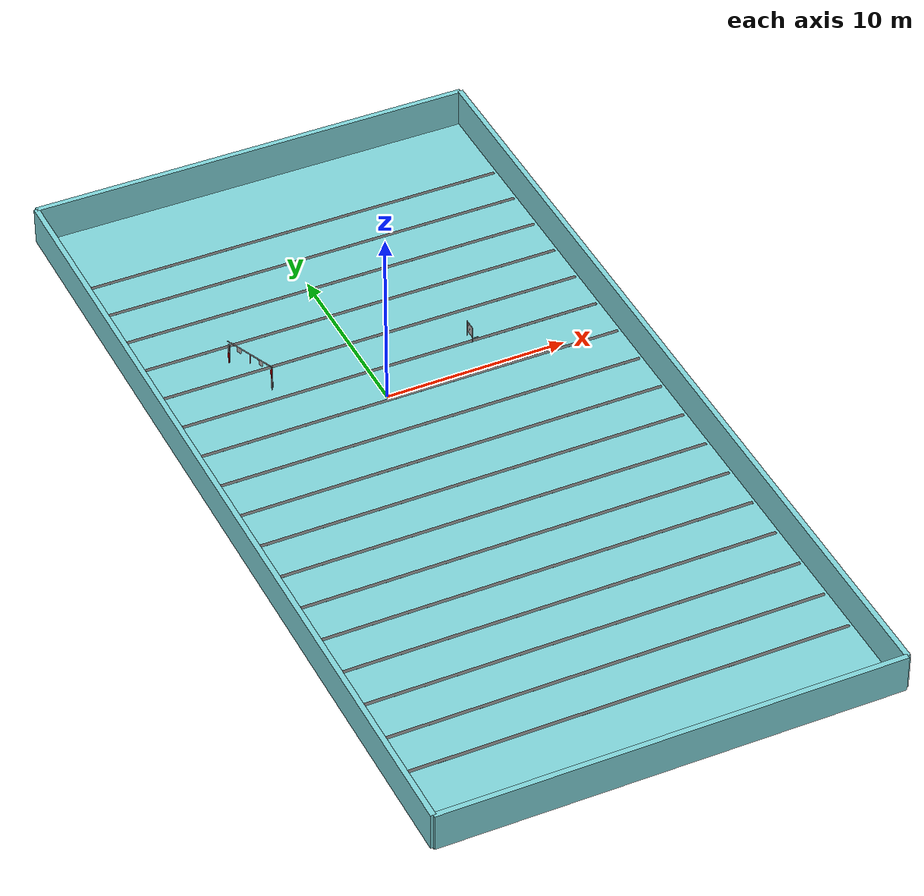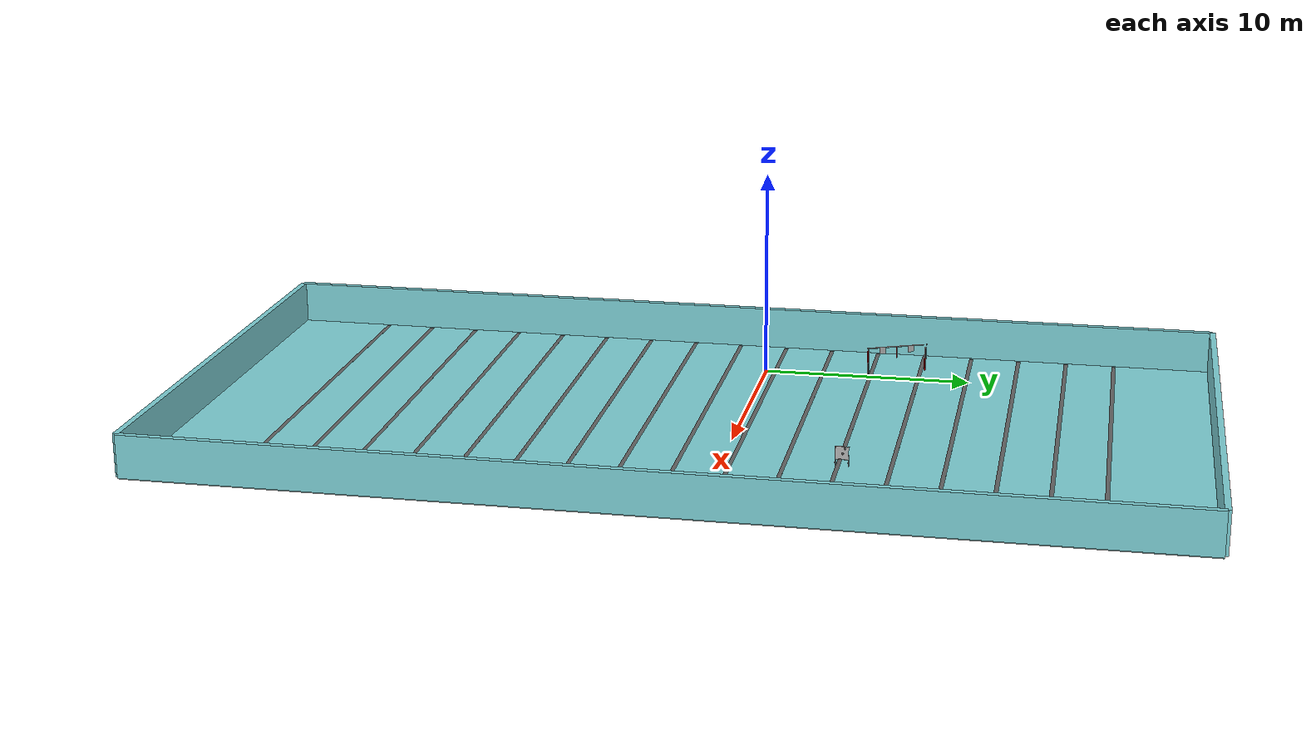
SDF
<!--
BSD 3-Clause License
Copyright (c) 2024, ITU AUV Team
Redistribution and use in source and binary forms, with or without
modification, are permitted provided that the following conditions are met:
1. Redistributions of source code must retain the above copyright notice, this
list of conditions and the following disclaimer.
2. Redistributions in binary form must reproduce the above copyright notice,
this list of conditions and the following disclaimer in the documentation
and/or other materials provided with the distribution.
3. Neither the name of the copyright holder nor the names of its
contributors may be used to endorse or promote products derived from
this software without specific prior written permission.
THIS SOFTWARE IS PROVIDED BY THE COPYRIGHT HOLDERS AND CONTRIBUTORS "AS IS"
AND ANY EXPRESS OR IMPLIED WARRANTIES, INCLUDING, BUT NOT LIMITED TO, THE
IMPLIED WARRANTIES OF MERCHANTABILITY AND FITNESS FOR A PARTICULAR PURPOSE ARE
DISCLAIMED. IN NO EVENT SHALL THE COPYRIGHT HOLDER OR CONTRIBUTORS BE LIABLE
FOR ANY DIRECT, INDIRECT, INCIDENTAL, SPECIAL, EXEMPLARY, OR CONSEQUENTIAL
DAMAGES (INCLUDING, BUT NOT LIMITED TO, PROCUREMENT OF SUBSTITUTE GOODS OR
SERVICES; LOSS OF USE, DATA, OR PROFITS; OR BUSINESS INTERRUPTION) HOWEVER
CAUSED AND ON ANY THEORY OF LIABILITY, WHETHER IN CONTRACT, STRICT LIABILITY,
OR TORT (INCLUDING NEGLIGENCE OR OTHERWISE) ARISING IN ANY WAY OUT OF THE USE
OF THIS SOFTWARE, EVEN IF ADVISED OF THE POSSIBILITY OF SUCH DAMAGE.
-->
<sdf version="1.6">
 <world name="prototype_world">
  <physics name="1ms" type="ignored">
   <max_step_size>0.004</max_step_size>
   <real_time_factor>1.0</real_time_factor>
   <real_time_update_rate>250</real_time_update_rate>
  </physics>
  <scene>
   <ambient>0.4 0.4 0.4 1.0</ambient>
   <sky><clouds><speed>12</speed></clouds></sky>
   <shadows>false</shadows>
  </scene>
  <include><uri>https://fuel.gazebosim.org/1.0/OpenRobotics/models/Sun</uri></include>
  <model name="pool_floor">
   <static>1</static>
   <pose>2 -3 0 0 0 0</pose>
   <link name="pool_floor_link">
    <collision name="pool_floor_collision">
     <geometry><box><size>25 50 0.1</size></box></geometry>
     <pose>0 0 -2.18 0 0 0</pose>
     <surface><friction><ode><mu>0.5</mu><mu2>0.5</mu2></ode></friction></surface>
    </collision>
    <visual name="pool_floor_visual">
     <geometry><box><size>25 50 0.1</size></box></geometry>
     <pose>0 0 -2.18 0 0 0</pose>
     <material>
      <ambient>0.5 0.83 0.85 1</ambient>
      <diffuse>0.5 0.83 0.85 1</diffuse>
      <specular>0.1 0.1 0.1 1</specular>
     </material>
    </visual>
   </link>
  </model>
  <model name="wall_north">
   <static>1</static>
   <pose>2 22 -1.065 0 0 0</pose>
   <link name="wall_north_link">
    <collision name="wall_north_collision">
     <geometry><box><size>25 0.3 2.13</size></box></geometry>
     <surface><friction><ode><mu>0.5</mu><mu2>0.5</mu2></ode></friction></surface>
    </collision>
    <visual name="wall_north_visual">
     <geometry><box><size>25 0.3 2.13</size></box></geometry>
     <material>
      <ambient>0.5 0.83 0.85 1</ambient>
      <diffuse>0.5 0.83 0.85 1</diffuse>
      <specular>0.1 0.1 0.1 1</specular>
     </material>
    </visual>
   </link>
  </model>
  <model name="wall_south">
   <static>1</static>
   <pose>2 -28 -1.065 0 0 0</pose>
   <link name="wall_south_link">
    <collision name="wall_south_collision">
     <geometry><box><size>25 0.3 2.13</size></box></geometry>
     <surface><friction><ode><mu>0.5</mu><mu2>0.5</mu2></ode></friction></surface>
    </collision>
    <visual name="wall_south_visual">
     <geometry><box><size>25 0.3 2.13</size></box></geometry>
     <material>
      <ambient>0.5 0.83 0.85 1</ambient>
      <diffuse>0.5 0.83 0.85 1</diffuse>
      <specular>0.1 0.1 0.1 1</specular>
     </material>
    </visual>
   </link>
  </model>
  <model name="wall_west">
   <static>1</static>
   <pose>-10.5 -3 -1.065 0 0 0</pose>
   <link name="wall_west_link">
    <collision name="wall_west_collision">
     <geometry><box><size>0.3 50 2.13</size></box></geometry>
     <surface><friction><ode><mu>0.5</mu><mu2>0.5</mu2></ode></friction></surface>
    </collision>
    <visual name="wall_west_visual">
     <geometry><box><size>0.3 50 2.13</size></box></geometry>
     <material>
      <ambient>0.5 0.83 0.85 1</ambient>
      <diffuse>0.5 0.83 0.85 1</diffuse>
      <specular>0.1 0.1 0.1 1</specular>
     </material>
    </visual>
   </link>
  </model>
  <model name="wall_east">
   <static>1</static>
   <pose>14.5 -3 -1.065 0 0 0</pose>
   <link name="wall_east_link">
    <collision name="wall_east_collision">
     <geometry><box><size>0.3 50 2.13</size></box></geometry>
     <surface><friction><ode><mu>0.5</mu><mu2>0.5</mu2></ode></friction></surface>
    </collision>
    <visual name="wall_east_visual">
     <geometry><box><size>0.3 50 2.13</size></box></geometry>
     <material>
      <ambient>0.5 0.83 0.85 1</ambient>
      <diffuse>0.5 0.83 0.85 1</diffuse>
      <specular>0.1 0.1 0.1 1</specular>
     </material>
    </visual>
   </link>
  </model>
  <model name="lane_marker_1">
   <static>1</static>
   <pose>2 7 -2.134 0 0 0</pose>
   <link name="lane_marker_1_link">
    <visual name="lane_marker_1_visual">
     <geometry><box><size>24.4 0.2 0.01</size></box></geometry>
     <material>
      <ambient>0.4 0.4 0.4 1</ambient>
      <diffuse>0.4 0.4 0.4 1</diffuse>
      <specular>0.1 0.1 0.1 1</specular>
     </material>
    </visual>
   </link>
  </model>
  <model name="lane_marker_2">
   <static>1</static>
   <pose>2 4.5 -2.134 0 0 0</pose>
   <link name="lane_marker_2_link">
    <visual name="lane_marker_2_visual">
     <geometry><box><size>24.4 0.2 0.01</size></box></geometry>
     <material>
      <ambient>0.4 0.4 0.4 1</ambient>
      <diffuse>0.4 0.4 0.4 1</diffuse>
      <specular>0.1 0.1 0.1 1</specular>
     </material>
    </visual>
   </link>
  </model>
  <model name="lane_marker_3">
   <static>1</static>
   <pose>2 2 -2.134 0 0 0</pose>
   <link name="lane_marker_3_link">
    <visual name="lane_marker_3_visual">
     <geometry><box><size>24.4 0.2 0.01</size></box></geometry>
     <material>
      <ambient>0.4 0.4 0.4 1</ambient>
      <diffuse>0.4 0.4 0.4 1</diffuse>
      <specular>0.1 0.1 0.1 1</specular>
     </material>
    </visual>
   </link>
  </model>
  <model name="lane_marker_4">
   <static>1</static>
   <pose>2 -0.5 -2.134 0 0 0</pose>
   <link name="lane_marker_4_link">
    <visual name="lane_marker_4_visual">
     <geometry><box><size>24.4 0.2 0.01</size></box></geometry>
     <material>
      <ambient>0.4 0.4 0.4 1</ambient>
      <diffuse>0.4 0.4 0.4 1</diffuse>
      <specular>0.1 0.1 0.1 1</specular>
     </material>
    </visual>
   </link>
  </model>
  <model name="lane_marker_5">
   <static>1</static>
   <pose>2 -3 -2.134 0 0 0</pose>
   <link name="lane_marker_5_link">
    <visual name="lane_marker_5_visual">
     <geometry><box><size>24.4 0.2 0.01</size></box></geometry>
     <material>
      <ambient>0.4 0.4 0.4 1</ambient>
      <diffuse>0.4 0.4 0.4 1</diffuse>
      <specular>0.1 0.1 0.1 1</specular>
     </material>
    </visual>
   </link>
  </model>
  <model name="lane_marker_6">
   <static>1</static>
   <pose>2 -5.5 -2.134 0 0 0</pose>
   <link name="lane_marker_6_link">
    <visual name="lane_marker_6_visual">
     <geometry><box><size>24.4 0.2 0.01</size></box></geometry>
     <material>
      <ambient>0.4 0.4 0.4 1</ambient>
      <diffuse>0.4 0.4 0.4 1</diffuse>
      <specular>0.1 0.1 0.1 1</specular>
     </material>
    </visual>
   </link>
  </model>
  <model name="lane_marker_7">
   <static>1</static>
   <pose>2 -8 -2.134 0 0 0</pose>
   <link name="lane_marker_7_link">
    <visual name="lane_marker_7_visual">
     <geometry><box><size>24.4 0.2 0.01</size></box></geometry>
     <material>
      <ambient>0.4 0.4 0.4 1</ambient>
      <diffuse>0.4 0.4 0.4 1</diffuse>
      <specular>0.1 0.1 0.1 1</specular>
     </material>
    </visual>
   </link>
  </model>
  <model name="lane_marker_8">
   <static>1</static>
   <pose>2 -10.5 -2.134 0 0 0</pose>
   <link name="lane_marker_8_link">
    <visual name="lane_marker_8_visual">
     <geometry><box><size>24.4 0.2 0.01</size></box></geometry>
     <material>
      <ambient>0.4 0.4 0.4 1</ambient>
      <diffuse>0.4 0.4 0.4 1</diffuse>
      <specular>0.1 0.1 0.1 1</specular>
     </material>
    </visual>
   </link>
  </model>
  <model name="lane_marker_9">
   <static>1</static>
   <pose>2 -13 -2.134 0 0 0</pose>
   <link name="lane_marker_9_link">
    <visual name="lane_marker_9_visual">
     <geometry><box><size>24.4 0.2 0.01</size></box></geometry>
     <material>
      <ambient>0.4 0.4 0.4 1</ambient>
      <diffuse>0.4 0.4 0.4 1</diffuse>
      <specular>0.1 0.1 0.1 1</specular>
     </material>
    </visual>
   </link>
  </model>
  <model name="lane_marker_10">
   <static>1</static>
   <pose>2 -15.5 -2.134 0 0 0</pose>
   <link name="lane_marker_10_link">
    <visual name="lane_marker_10_visual">
     <geometry><box><size>24.4 0.2 0.01</size></box></geometry>
     <material>
      <ambient>0.4 0.4 0.4 1</ambient>
      <diffuse>0.4 0.4 0.4 1</diffuse>
      <specular>0.1 0.1 0.1 1</specular>
     </material>
    </visual>
   </link>
  </model>
  <model name="lane_marker_11">
   <static>1</static>
   <pose>2 -18 -2.134 0 0 0</pose>
   <link name="lane_marker_11_link">
    <visual name="lane_marker_11_visual">
     <geometry><box><size>24.4 0.2 0.01</size></box></geometry>
     <material>
      <ambient>0.4 0.4 0.4 1</ambient>
      <diffuse>0.4 0.4 0.4 1</diffuse>
      <specular>0.1 0.1 0.1 1</specular>
     </material>
    </visual>
   </link>
  </model>
  <model name="lane_marker_12">
   <static>1</static>
   <pose>2 -20.5 -2.134 0 0 0</pose>
   <link name="lane_marker_12_link">
    <visual name="lane_marker_12_visual">
     <geometry><box><size>24.4 0.2 0.01</size></box></geometry>
     <material>
      <ambient>0.4 0.4 0.4 1</ambient>
      <diffuse>0.4 0.4 0.4 1</diffuse>
      <specular>0.1 0.1 0.1 1</specular>
     </material>
    </visual>
   </link>
  </model>
  <model name="lane_marker_13">
   <static>1</static>
   <pose>2 -23 -2.134 0 0 0</pose>
   <link name="lane_marker_13_link">
    <visual name="lane_marker_13_visual">
     <geometry><box><size>24.4 0.2 0.01</size></box></geometry>
     <material>
      <ambient>0.4 0.4 0.4 1</ambient>
      <diffuse>0.4 0.4 0.4 1</diffuse>
      <specular>0.1 0.1 0.1 1</specular>
     </material>
    </visual>
   </link>
  </model>
  <model name="lane_marker_14">
   <static>1</static>
   <pose>2 9.5 -2.134 0 0 0</pose>
   <link name="lane_marker_14_link">
    <visual name="lane_marker_14_visual">
     <geometry><box><size>24.4 0.2 0.01</size></box></geometry>
     <material>
      <ambient>0.4 0.4 0.4 1</ambient>
      <diffuse>0.4 0.4 0.4 1</diffuse>
      <specular>0.1 0.1 0.1 1</specular>
     </material>
    </visual>
   </link>
  </model>
  <model name="lane_marker_15">
   <static>1</static>
   <pose>2 12 -2.134 0 0 0</pose>
   <link name="lane_marker_15_link">
    <visual name="lane_marker_15_visual">
     <geometry><box><size>24.4 0.2 0.01</size></box></geometry>
     <material>
      <ambient>0.4 0.4 0.4 1</ambient>
      <diffuse>0.4 0.4 0.4 1</diffuse>
      <specular>0.1 0.1 0.1 1</specular>
     </material>
    </visual>
   </link>
  </model>
  <model name="lane_marker_16">
   <static>1</static>
   <pose>2 14.5 -2.134 0 0 0</pose>
   <link name="lane_marker_16_link">
    <visual name="lane_marker_16_visual">
     <geometry><box><size>24.4 0.2 0.01</size></box></geometry>
     <material>
      <ambient>0.4 0.4 0.4 1</ambient>
      <diffuse>0.4 0.4 0.4 1</diffuse>
      <specular>0.1 0.1 0.1 1</specular>
     </material>
    </visual>
   </link>
  </model>
  <model name="lane_marker_17">
   <static>1</static>
   <pose>2 17 -2.134 0 0 0</pose>
   <link name="lane_marker_17_link">
    <visual name="lane_marker_17_visual">
     <geometry><box><size>24.4 0.2 0.01</size></box></geometry>
     <material>
      <ambient>0.4 0.4 0.4 1</ambient>
      <diffuse>0.4 0.4 0.4 1</diffuse>
      <specular>0.1 0.1 0.1 1</specular>
     </material>
    </visual>
   </link>
  </model>
  <include><uri>model://robosub_gate</uri><name>robosub_gate_1</name><pose>-5 6 -1.5 0 0 0.4</pose></include>
  <include>
   <uri>model://robosub_torpedo</uri>
   <name>robosub_torpedo_1</name>
   <pose>7 3.75 -2.129 1.57 0 0</pose>
  </include>
  <plugin filename="gz-sim-physics-system" name="gz::sim::systems::Physics"/>
  <plugin filename="gz-sim-user-commands-system" name="gz::sim::systems::UserCommands"/>
  <plugin filename="gz-sim-scene-broadcaster-system" name="gz::sim::systems::SceneBroadcaster"/>
  <plugin filename="gz-sim-imu-system" name="gz::sim::systems::Imu"/>
  <plugin filename="gz-sim8-dopplervelocitylog-system" name="gz::sim::systems::DopplerVelocityLogSystem"/>
  <plugin filename="gz-sim-sensors-system" name="gz::sim::systems::Sensors">
   <render_engine>ogre2</render_engine>
  </plugin>
  <plugin filename="gz-sim-buoyancy-system" name="gz::sim::systems::Buoyancy">
   <graded_buoyancy>
    <default_density>1000</default_density>
    <density_change><above_depth>0</above_depth><density>1</density></density_change>
   </graded_buoyancy>
   <enable>prototype_vehicle</enable>
  </plugin>
 </world>
</sdf>

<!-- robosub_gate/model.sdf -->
<sdf version="1.6">
	<model name="robosub_gate">
		<static>true</static>
    	<pose>0 0 0 0 0 0</pose>
		<link name="robosub_gate">
			<pose>0 0 0 0 0 0</pose>
			<collision name="robosub_gate_col">
				<pose>0 0 0 0 0 0</pose>
				<geometry>
					<mesh>
						<uri>model://robosub_gate/meshes/gate.dae</uri>
					</mesh>
				</geometry>
			</collision>
			<visual name="robosub_gate_vis">
				<pose>0 0 0 0 0 0</pose>
				<geometry>
					<mesh>
						<uri>model://robosub_gate/meshes/gate.dae</uri>
					</mesh>
				</geometry>
			</visual>

		</link>
	</model>
</sdf>

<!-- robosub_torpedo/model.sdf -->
<sdf version="1.6">
	<model name="robosub_torpedo">
		<static>true</static>
    	<pose>0 0 0 0 0 0</pose>
		<link name="robosub_torpedo">
			<pose>0 0 0 0 0 0</pose>
			<collision name="robosub_torpedo_col">
				<pose>0 0 0 0 0 0</pose>
				<geometry>
					<mesh>
						<uri>model://robosub_torpedo/meshes/torpedo.dae</uri>
					</mesh>
				</geometry>
			</collision>
			<visual name="robosub_torpedo_vis">
				<pose>0 0 0 0 0 0</pose>
				<geometry>
					<mesh>
						<uri>model://robosub_torpedo/meshes/torpedo.dae</uri>
					</mesh>
				</geometry>
			</visual>

		</link>
	</model>
</sdf>
